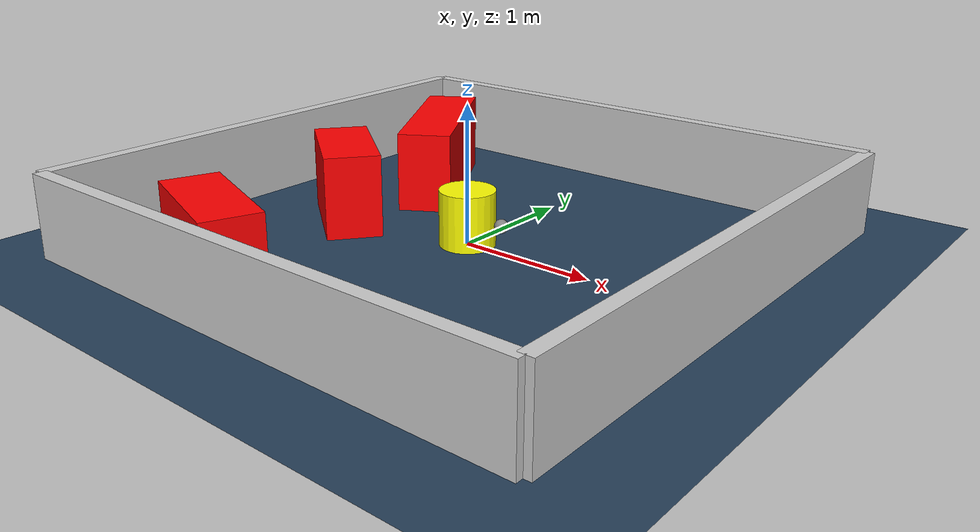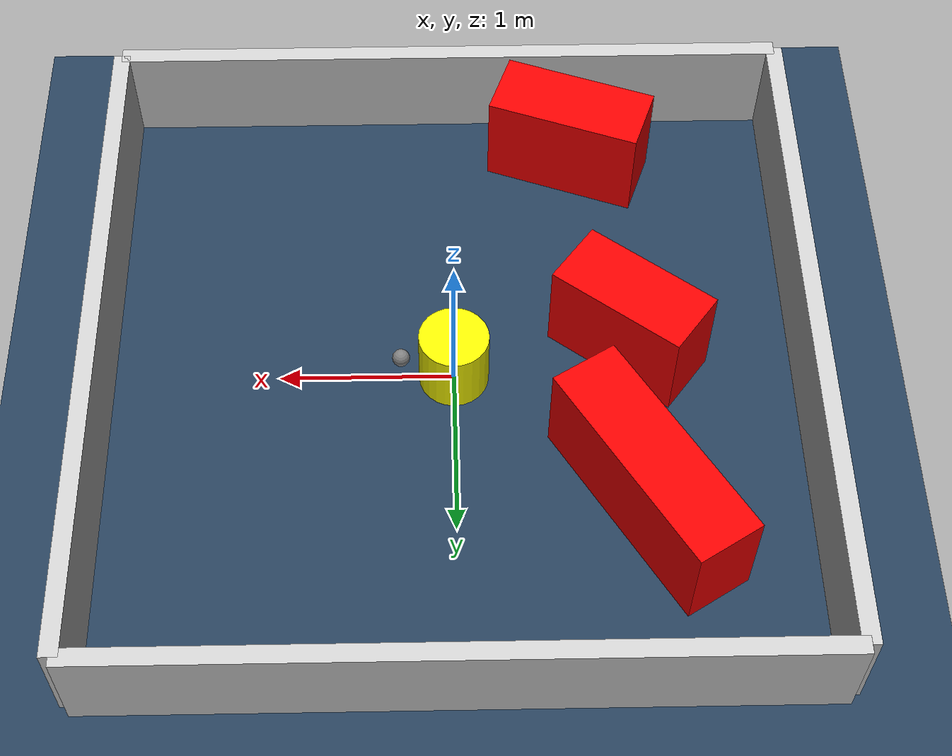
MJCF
<?xml version="1.0" ?>
<mujoco model="generated_environment">
  <option timestep="0.01" integrator="RK4" cone="elliptic"/>
  <default>
    <geom density="1"/>
  </default>
  <asset>
    <texture builtin="gradient" height="3072" rgb1="0.3 0.5 0.7" rgb2="0 0 0" type="skybox" width="512"/>
    <texture builtin="checker" height="300" mark="edge" markrgb="0.8 0.8 0.8" name="groundplane" rgb1="0.2 0.3 0.4" rgb2="0.1 0.2 0.3" type="2d" width="300"/>
    <material name="groundplane" reflectance="0.2" texrepeat="5 5" texture="groundplane" texuniform="true"/>
    <material name="robot" rgba="0.0 1.0 0.0 1"/>
  </asset>
  <worldbody>
    <light dir="0 0 -1" directional="true" pos="0 0 1.5"/>
    <geom condim="4" friction="1.0 0.005 0.001" material="groundplane" name="floor" size="0 0 0.05" type="plane"/>
    <body name="walls">
      <geom name="wall_1" condim="4" pos="-2.0 0.0 0.3" rgba="0.800000011920929 0.800000011920929 0.800000011920929 1.0" size="0.05 2.0 0.3" type="box"/>
      <geom name="wall_2" condim="4" pos="2.0 0.0 0.3" rgba="0.800000011920929 0.800000011920929 0.800000011920929 1.0" size="0.05 2.0 0.3" type="box"/>
      <geom name="wall_3" condim="4" pos="0.0 -2.0 0.3" rgba="0.800000011920929 0.800000011920929 0.800000011920929 1.0" size="2.0 0.05 0.3" type="box"/>
      <geom name="wall_4" condim="4" pos="0.0 2.0 0.3" rgba="0.800000011920929 0.800000011920929 0.800000011920929 1.0" size="2.0 0.05 0.3" type="box"/>
    </body>
    <body name="robot">
      <joint name="joint_x" type="slide" pos="0 0 0" axis="1 0 0"/>
      <joint name="joint_y" type="slide" pos="0 0 0" axis="0 1 0"/>
      <geom name="robot" type="sphere" pos="0.3 0.0 0.2" size="0.05" mass="5." friction="1.0 0.005 0.0001" condim="4" rgba="0.5 0.5 0.5 1.0"/>
      <site name="sensor_ball"/>
    </body>
    <body name="obstacle_movable_1">
      <geom name="obstacle_movable_1" condim="4" pos="0.0 0.0 0.2" euler="0 0 0.0" friction="1.0 0.005 0.001" rgba="1.0 1.0 0.0 1.0" size="0.2 0.2 0.0" type="cylinder" mass="0.1"/>
      <joint type="free"/>
    </body>
    <body name="obstacle_2_static">
      <geom name="obstacle_2_static" condim="4" pos="-1.00813782394202 -0.18004056033236693 0.3" euler="0 0 142.54312535840882" friction="1.0 0.005 0.001" rgba="1 0 0 1" size="0.4181396955244112 0.2 0.3" type="box"/>
    </body>
    <body name="obstacle_3_static">
      <geom name="obstacle_3_static" condim="4" pos="-1.0377051262843815 0.8771927565103061 0.3" euler="0 0 121.41817968777433" friction="1.0 0.005 0.001" rgba="1 0 0 1" size="0.6593989911562992 0.2 0.3" type="box"/>
    </body>
    <body name="obstacle_4_static">
      <geom name="obstacle_4_static" condim="4" pos="-0.735940737279812 -1.5805808487496644 0.3" euler="0 0 339.84519856881417" friction="1.0 0.005 0.001" rgba="1 0 0 1" size="0.45794113341354337 0.2 0.3" type="box"/>
    </body>
  </worldbody>
  <actuator>
    <motor name="actuator_x" joint="joint_x" gear="1" ctrlrange="-1 1"/>
    <motor name="actuator_y" joint="joint_y" gear="1" ctrlrange="-1 1"/>
  </actuator>
</mujoco>
